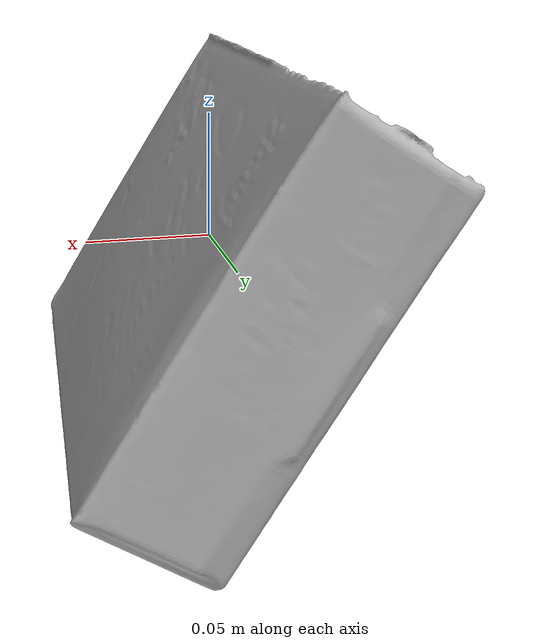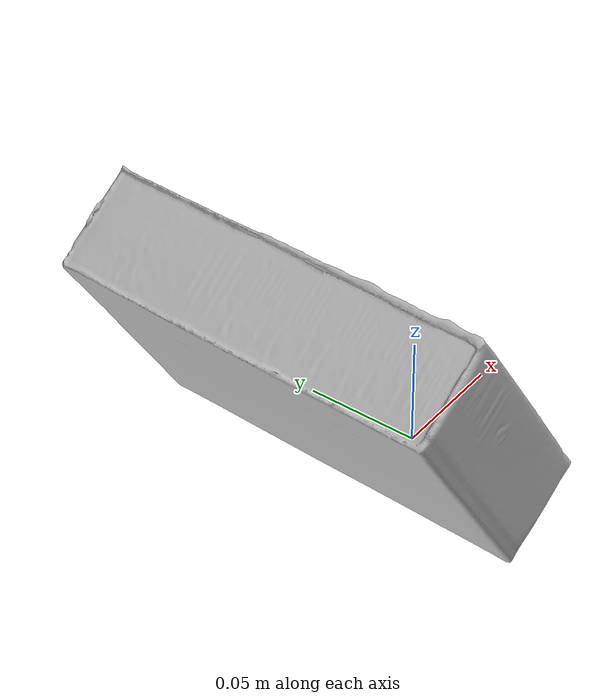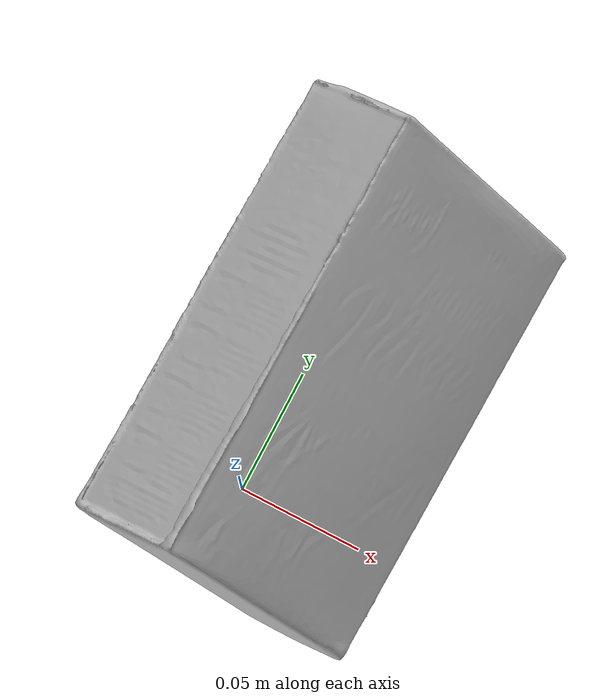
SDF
<?xml version='1.0'?>
<sdf version="1.4">
  <model name="MashedPotatoes">
    <static>false</static>
    <link name="link">
      <inertial>
        <pose>0.009462983862668127 0.05314504568776784 0.005662128306822926 -1.5753843587637475 0.5542654013661611 3.109142364789925</pose>
        <mass>0.13397348700649955</mass>
        <inertia>
          <ixx>0.0005888734103681854</ixx>
          <ixy>8.262440380848648e-20</ixy>
          <ixz>5.516476512303088e-20</ixz>
          <iyy>0.00041219444846706806</iyy>
          <iyz>9.397394788892797e-20</iyz>
          <izz>0.00023793136299812652</izz>
        </inertia>
      </inertial>
      <collision name="collision">
        <geometry>
          <mesh>
            <!-- Use a downsampled mesh for collisions -->
            <uri>model:///MashedPotatoes/MashedPotatoes_250_collision.obj</uri>
	        </mesh>
        </geometry>
        <surface>
      </surface>
      </collision>
      <visual name="visual">
        <geometry>
          <mesh>
            <uri>model:///MashedPotatoes/MashedPotatoes_25k_tex.obj</uri>
	        </mesh>
        </geometry>
        <material>
          <script>
            <uri>model:///MashedPotatoes/MashedPotatoes.material</uri>
            <name>MashedPotatoes</name>
          </script>
        </material>
      </visual>
    </link>
  </model>
</sdf>
